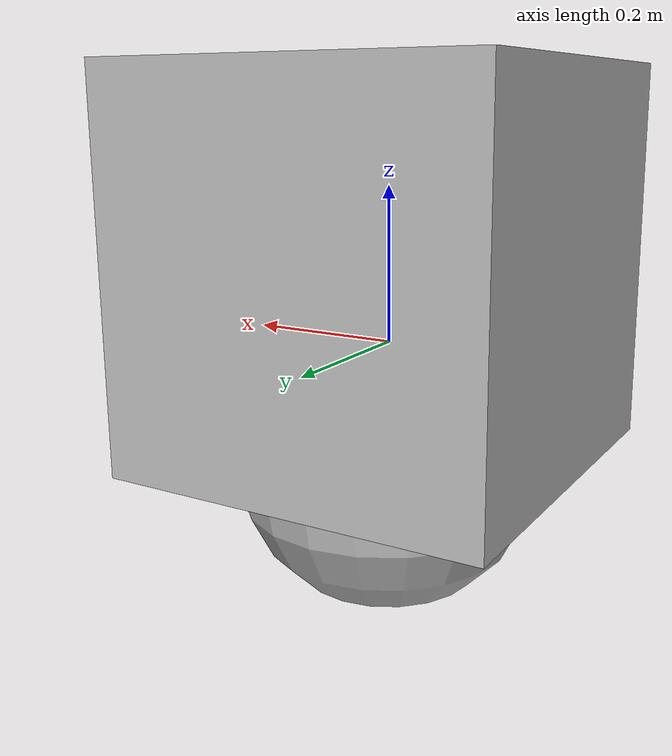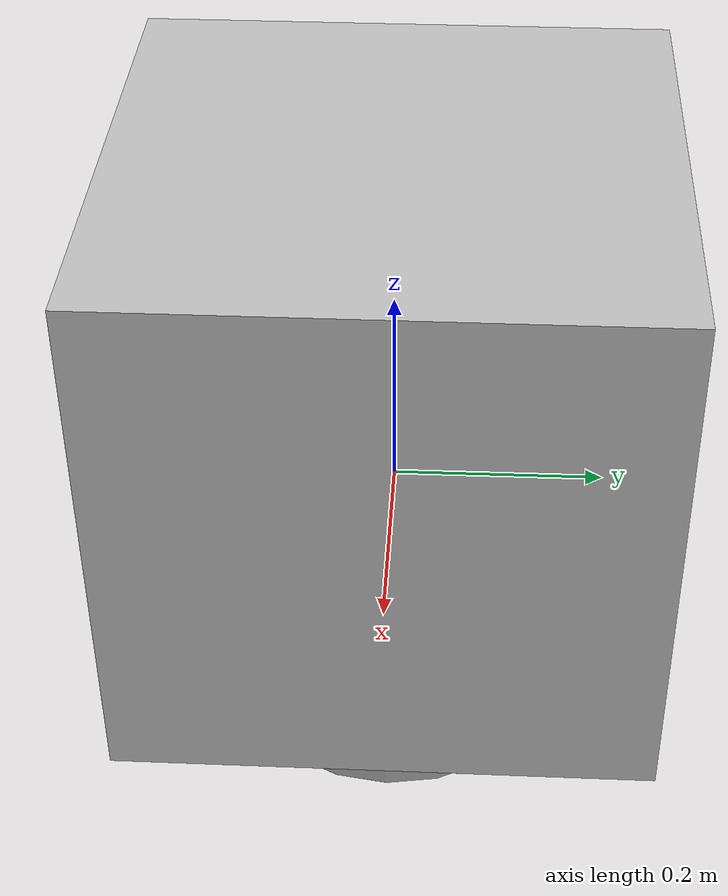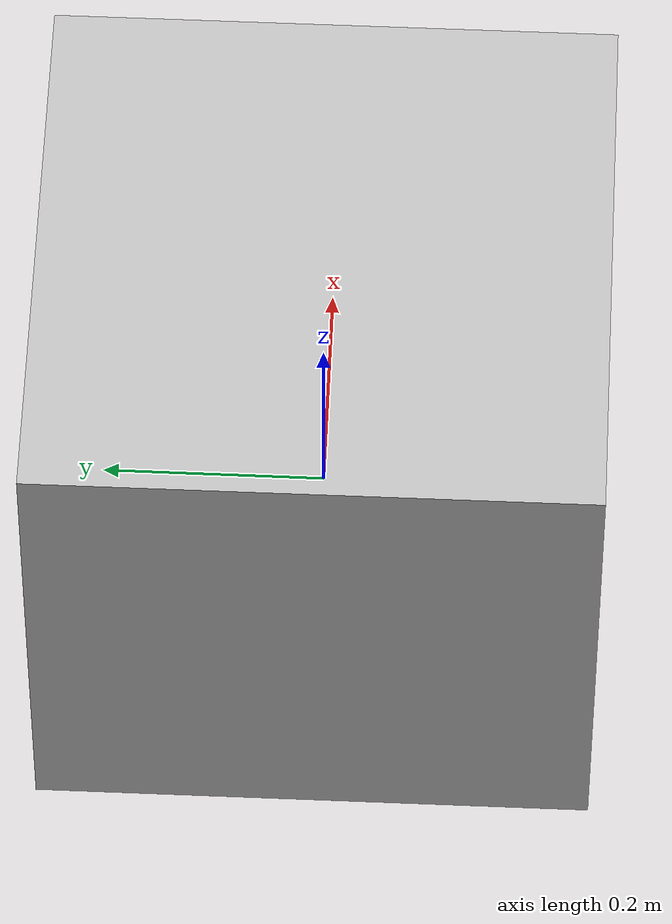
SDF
<?xml version='1.0'?>
<sdf version='1.4'>
  <model name="camera">
    <static>true</static>
    <link name='chassis'>
    <pose>0 0 .1 0 0 0</pose>

    <collision name='collision'>
        <geometry>
        <box>
            <size>.5 .5 .5</size>
        </box>
        </geometry>
    </collision>

    <visual name='visual'>
        <geometry>
        <box>
            <size>.5 .5 .5</size>
        </box>
        </geometry>
    </visual>

    <collision name='caster_collision'>
    <pose>0 0 -0.25 0 0 0</pose>
    <geometry>
        <sphere>
        <radius>.2</radius>
      </sphere>
    </geometry>

    <surface>
      <friction>
        <ode>
          <mu>0</mu>
          <mu2>0</mu2>
          <slip1>1.0</slip1>
          <slip2>1.0</slip2>
        </ode>
      </friction>
    </surface>
  </collision>

  <visual name='caster_visual'>
    <pose>0 0 -0.25 0 0 0</pose>
    <geometry>
      <sphere>
        <radius>.2</radius>
      </sphere>
    </geometry>
  </visual>

    <sensor name="logical_camera" type="logical_camera">

      <logical_camera>
        <near>0.2</near>
        <far>30.0</far>
        <horizontal_fov>0.9</horizontal_fov>
        <aspect_ratio>1.0</aspect_ratio>
      </logical_camera>

      <visualize>false</visualize>
      <always_on>true</always_on>
      <update_rate>10</update_rate>
      <topic>camera_1</topic>
    </sensor>

    <sensor name='camera' type='camera'>
      <camera name='camera_1'>
        <pose>0 0 -0.6 0 90 0</pose>
          <horizontal_fov>0.9</horizontal_fov>
          <aspect_ratio>1.0</aspect_ratio>
          <image>
              <width>640</width>
              <height>640</height>
          </image>
          <clip>
              <near>0.2</near>
              <far>30.0</far>
          </clip>
      </camera>
      <always_on>true</always_on>
      <update_rate>10</update_rate>
      <visualize>false</visualize>
      <plugin name='camera_controller' filename='libgazebo_ros_camera.so'>
          <cameraName>camera_1</cameraName>
          <eventThreshold>10</eventThreshold>
          <cameraInfoTopicName>camera_1</cameraInfoTopicName>
      </plugin>
    </sensor>

    </link>
  </model>
</sdf>
